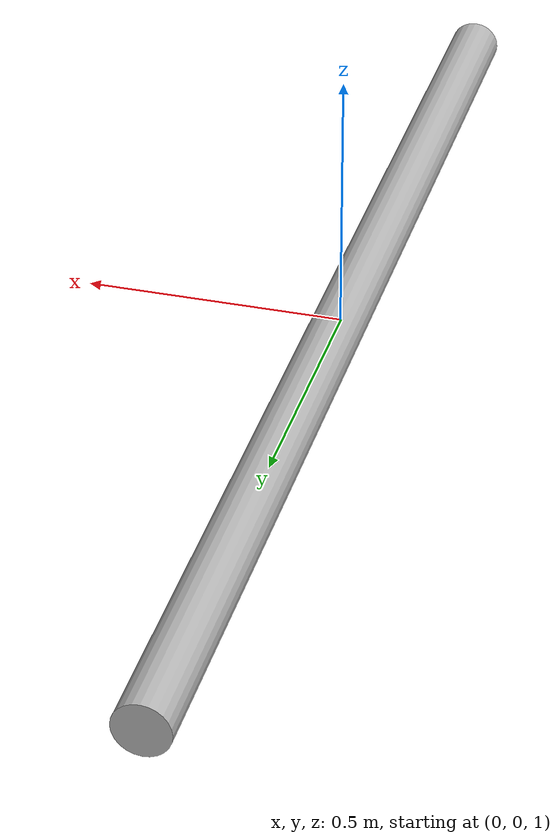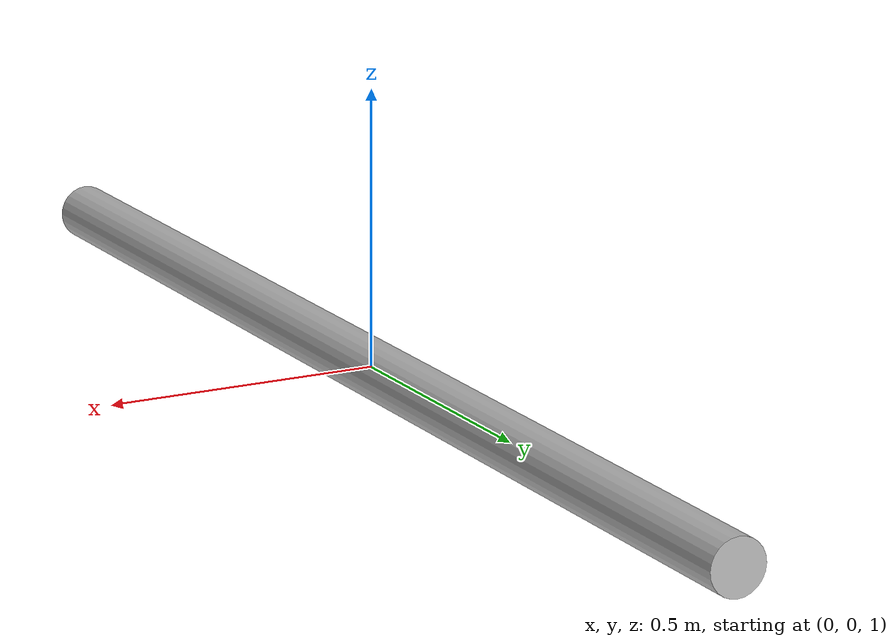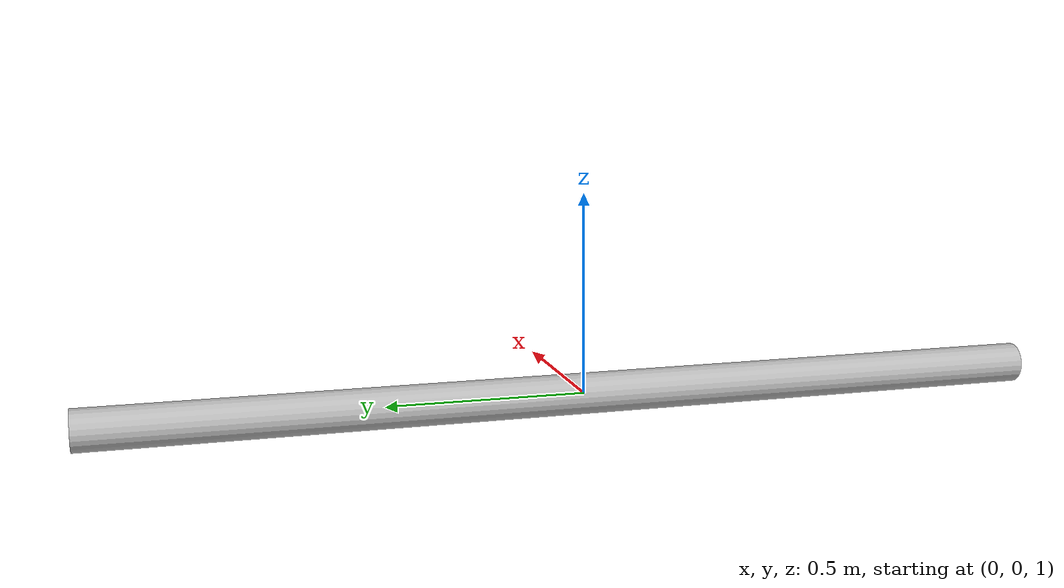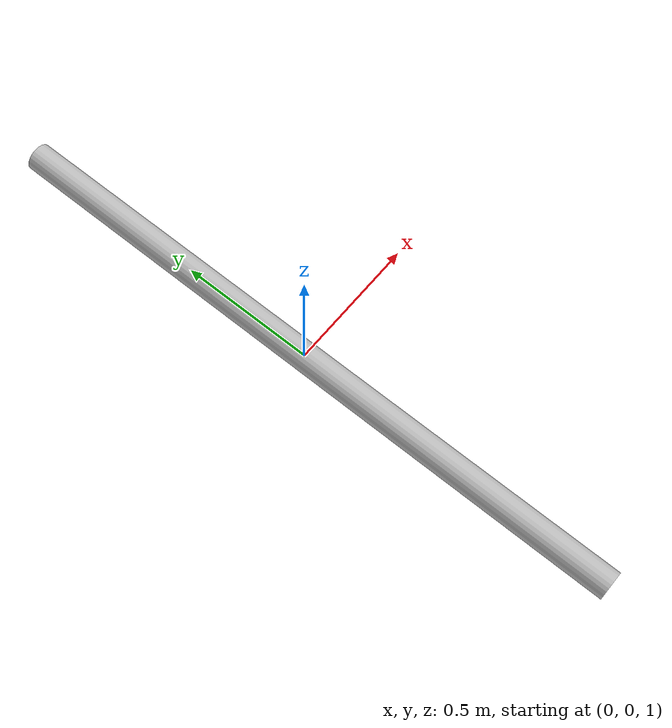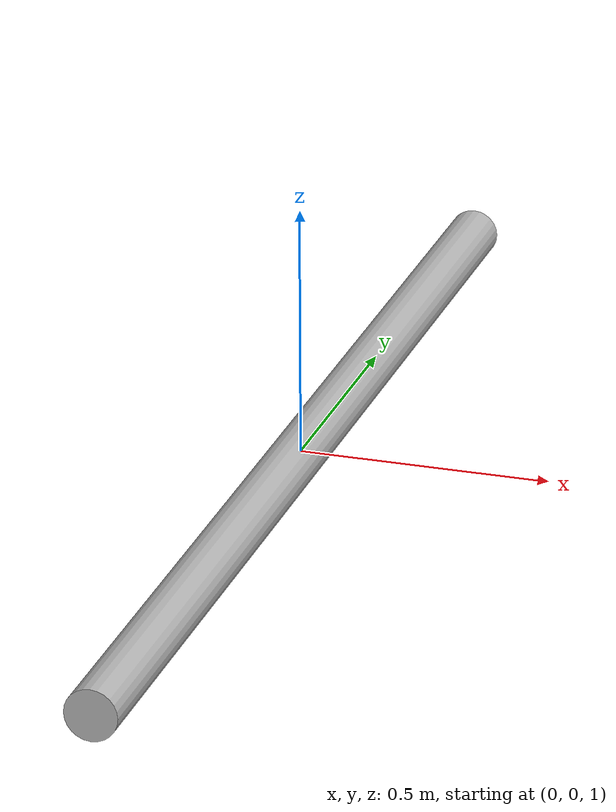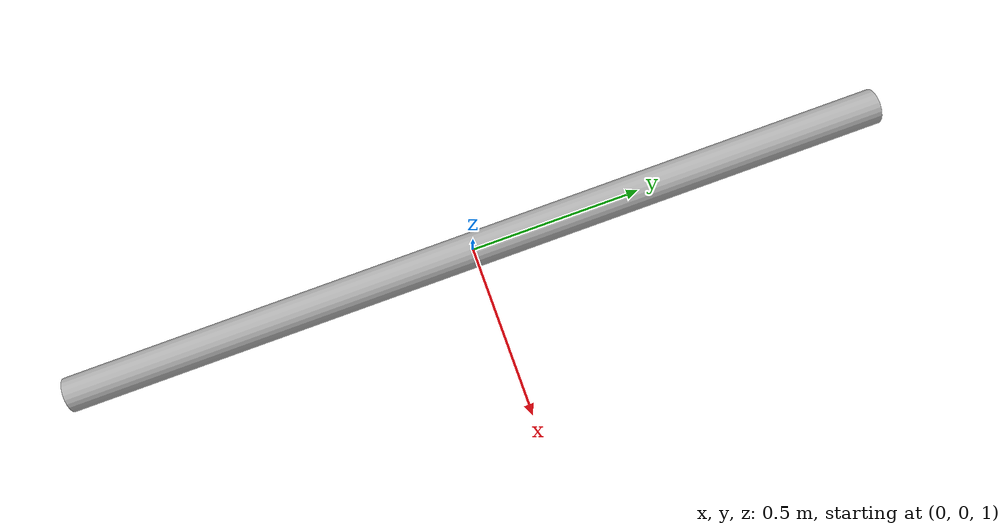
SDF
<?xml version="1.0"?>
<sdf version="1.6">
  <model name="channel">
    <pose>0 0 0 0 0 0</pose>
    <static>true</static>
      <link name="channel">
        <pose>0 0 1 1.5707 0 0</pose>
        <collision name="collision">
          <geometry>
            <cylinder>
              <radius>0.051</radius>
              <length>2.438</length>
            </cylinder>
          </geometry>
        </collision>
        <visual name="visual">
          <geometry>
            <cylinder>
              <radius>0.051</radius>
              <length>2.438</length>
            </cylinder>
          </geometry>
        </visual>
      </link>
  </model>
</sdf>
